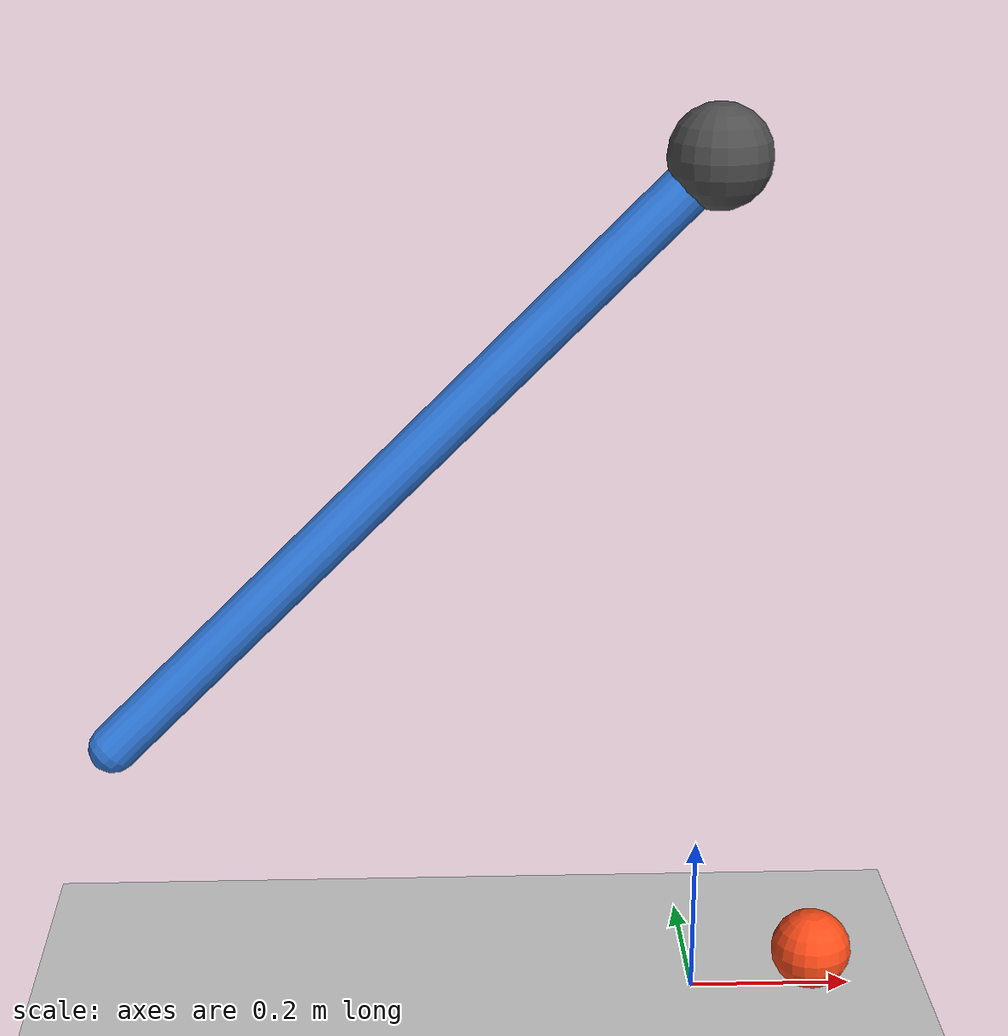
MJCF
<mujoco model="pendulo_bola">
    <compiler angle="degree"/>

    <!-- Passo de 0,5 ms para resolver o impacto com maior detalhe. -->
    <option gravity="0 0 -9.81" timestep="0.0005"/>

    <worldbody>
        <light pos="0 -2 4"/>

        <!-- Chão fixo, com colisões ativas. -->
        <geom name="chao"
              type="plane"
              size="4 4 0.1"
              friction="0.5 0.005 0.0001"
              rgba="0.8 0.8 0.8 1"/>

        <!-- Marcador visual da articulação, sem colisões. -->
        <geom name="suporte"
              type="sphere"
              pos="0 0 1.05"
              size="0.06"
              contype="0"
              conaffinity="0"
              rgba="0.3 0.3 0.3 1"/>

        <!-- Pêndulo inicialmente inclinado.
             O extremo inferior começa do lado negativo de x
             e aproxima-se da bola ao cair. -->
        <body name="pendulo"
              pos="0 0 1.05"
              euler="0 45 0">

            <!-- Rotação livre em torno de y, sem amortecimento. -->
            <joint name="articulacao"
                   type="hinge"
                   axis="0 1 0"
                   damping="0"/>

            <!-- Cápsula de 1 kg.
                 Na vertical, o centro da ponta inferior fica
                 a 5 cm do chão e a superfície fica a 2 cm. -->
            <geom name="barra"
                  type="capsule"
                  fromto="0 0 0 0 0 -1"
                  size="0.03"
                  mass="1"
                  friction="0.5 0.005 0.0001"
                  rgba="0.2 0.5 0.9 1"/>
        </body>

        <!-- Bola ligeiramente à frente do pêndulo.
             Centro a 5 cm de altura: começa apoiada no chão. -->
        <body name="bola" pos="0.15 0 0.05">

            <!-- Permite translação em x, y, z e rotação
                 em torno dos três eixos: 6 graus de liberdade. -->
            <freejoint/>

            <geom name="bola_geom"
                  type="sphere"
                  size="0.05"
                  mass="0.1"
                  condim="6"
                  friction="0.5 0.005 0.005"
                  rgba="1 0.3 0.1 1"/>
        </body>
    </worldbody>
</mujoco>
